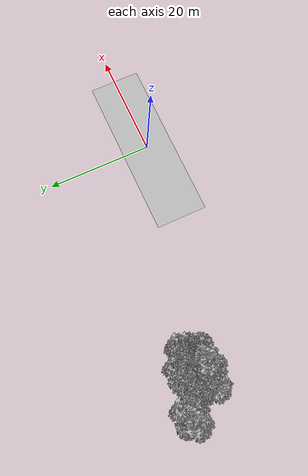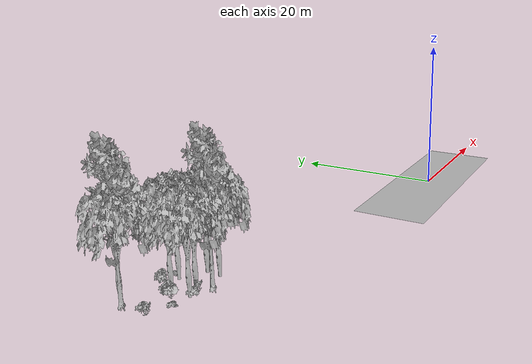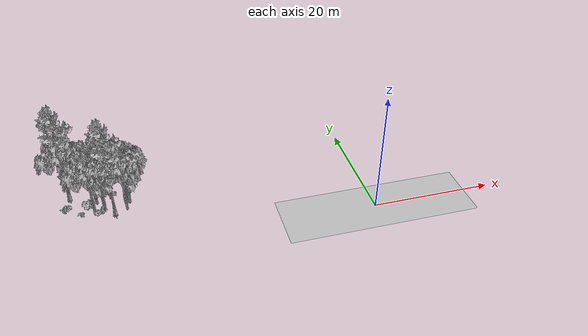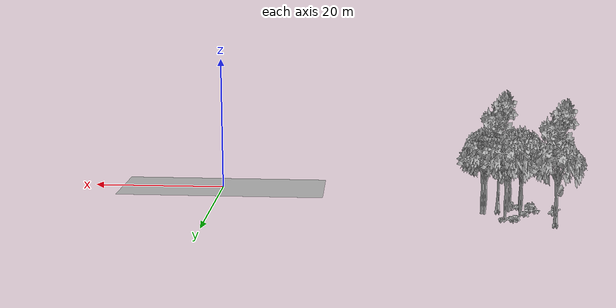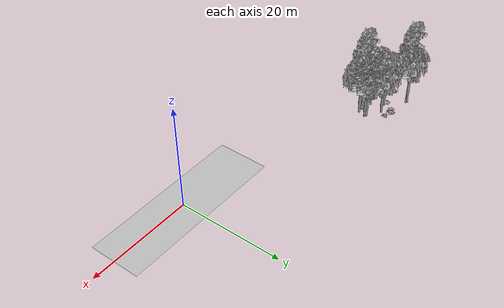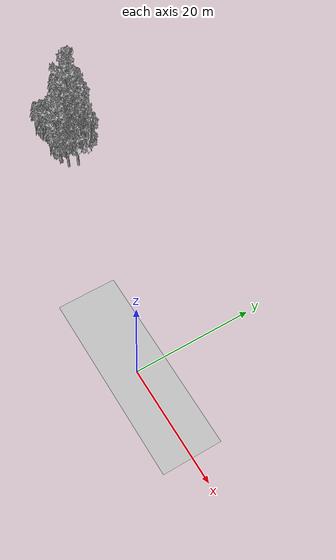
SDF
<sdf version="1.7">
 <world name="default">
  <model name="ground_plane">
   <static>1</static>
   <link name="link">
    <collision name="collision">
     <geometry><plane><normal>0 0 1</normal><size>100 100</size></plane></geometry>
     <surface><contact><ode><min_depth>0.01</min_depth><max_vel>0</max_vel></ode></contact></surface>
    </collision>
    <visual name="grass">
     <cast_shadows>0</cast_shadows>
     <geometry>
      <mesh>
       <scale>0.5814285714285714 0.18142857142857144 0.1</scale>
       <uri>file://grass_plane/meshes/grass_plane.dae</uri>
      </mesh>
     </geometry>
    </visual>
   </link>
  </model>
  <model name="Tree 2">
   <static>1</static>
   <pose>-38.52763291377046 11.083928158771037 0 1.57079 -0 0</pose>
   <link name="link">
    <collision name="collision">
     <geometry><mesh><scale>3.5 5 3.5</scale><uri>model://tree_2/meshes/tree_2.obj</uri></mesh></geometry>
    </collision>
    <visual name="visual">
     <geometry><mesh><scale>3.5 5 3.5</scale><uri>model://tree_2/meshes/tree_2.obj</uri></mesh></geometry>
    </visual>
   </link>
  </model>
  <model name="Tree 103">
   <static>1</static>
   <pose>-40.95871210117214 9.013705744526767 0 1.57079 -0 0</pose>
   <link name="link">
    <collision name="collision">
     <geometry><mesh><scale>3.5 5 3.5</scale><uri>model://tree_9/meshes/tree_9.obj</uri></mesh></geometry>
    </collision>
    <visual name="visual">
     <geometry><mesh><scale>3.5 5 3.5</scale><uri>model://tree_9/meshes/tree_9.obj</uri></mesh></geometry>
    </visual>
   </link>
  </model>
  <model name="Tree 129">
   <static>1</static>
   <pose>-38.915326227133235 11.281877602401845 0 1.57079 -0 0</pose>
   <link name="link">
    <collision name="collision">
     <geometry><mesh><scale>3.5 5 3.5</scale><uri>model://tree_2/meshes/tree_2.obj</uri></mesh></geometry>
    </collision>
    <visual name="visual">
     <geometry><mesh><scale>3.5 5 3.5</scale><uri>model://tree_2/meshes/tree_2.obj</uri></mesh></geometry>
    </visual>
   </link>
  </model>
  <model name="Tree 143">
   <static>1</static>
   <pose>-48.023062553046124 14.7601933107869 0 1.57079 -0 0</pose>
   <link name="link">
    <collision name="collision">
     <geometry><mesh><scale>3.5 5 3.5</scale><uri>model://tree_9/meshes/tree_9.obj</uri></mesh></geometry>
    </collision>
    <visual name="visual">
     <geometry><mesh><scale>3.5 5 3.5</scale><uri>model://tree_9/meshes/tree_9.obj</uri></mesh></geometry>
    </visual>
   </link>
  </model>
  <model name="Tree 201">
   <static>1</static>
   <pose>-42.486743873433596 9.97641363159181 0 1.57079 -0 0</pose>
   <link name="link">
    <collision name="collision">
     <geometry><mesh><scale>3.5 5 3.5</scale><uri>model://tree_2/meshes/tree_2.obj</uri></mesh></geometry>
    </collision>
    <visual name="visual">
     <geometry><mesh><scale>3.5 5 3.5</scale><uri>model://tree_2/meshes/tree_2.obj</uri></mesh></geometry>
    </visual>
   </link>
  </model>
  <model name="Tree 315">
   <static>1</static>
   <pose>-43.74062958446652 12.13553065203698 0 1.57079 -0 0</pose>
   <link name="link">
    <collision name="collision">
     <geometry><mesh><scale>3.5 5 3.5</scale><uri>model://tree_2/meshes/tree_2.obj</uri></mesh></geometry>
    </collision>
    <visual name="visual">
     <geometry><mesh><scale>3.5 5 3.5</scale><uri>model://tree_2/meshes/tree_2.obj</uri></mesh></geometry>
    </visual>
   </link>
  </model>
  <model name="Tree 327">
   <static>1</static>
   <pose>-39.07415056371874 9.52252915976663 0 1.57079 -0 0</pose>
   <link name="link">
    <collision name="collision">
     <geometry><mesh><scale>3.5 5 3.5</scale><uri>model://tree_2/meshes/tree_2.obj</uri></mesh></geometry>
    </collision>
    <visual name="visual">
     <geometry><mesh><scale>3.5 5 3.5</scale><uri>model://tree_2/meshes/tree_2.obj</uri></mesh></geometry>
    </visual>
   </link>
  </model>
  <model name="Tree 351">
   <static>1</static>
   <pose>-41.532627110922604 12.95816530144015 0 1.57079 -0 0</pose>
   <link name="link">
    <collision name="collision">
     <geometry><mesh><scale>3.5 5 3.5</scale><uri>model://tree_2/meshes/tree_2.obj</uri></mesh></geometry>
    </collision>
    <visual name="visual">
     <geometry><mesh><scale>3.5 5 3.5</scale><uri>model://tree_2/meshes/tree_2.obj</uri></mesh></geometry>
    </visual>
   </link>
  </model>
  <model name="Tree 380">
   <static>1</static>
   <pose>-48.00933561262325 14.8655135902899 0 1.57079 -0 0</pose>
   <link name="link">
    <collision name="collision">
     <geometry><mesh><scale>3.5 5 3.5</scale><uri>model://tree_2/meshes/tree_2.obj</uri></mesh></geometry>
    </collision>
    <visual name="visual">
     <geometry><mesh><scale>3.5 5 3.5</scale><uri>model://tree_2/meshes/tree_2.obj</uri></mesh></geometry>
    </visual>
   </link>
  </model>
  <model name="Tree 391">
   <static>1</static>
   <pose>-44.09037844498242 9.495779081489914 0 1.57079 -0 0</pose>
   <link name="link">
    <collision name="collision">
     <geometry><mesh><scale>3.5 5 3.5</scale><uri>model://tree_2/meshes/tree_2.obj</uri></mesh></geometry>
    </collision>
    <visual name="visual">
     <geometry><mesh><scale>3.5 5 3.5</scale><uri>model://tree_2/meshes/tree_2.obj</uri></mesh></geometry>
    </visual>
   </link>
  </model>
  <model name="Bush 28">
   <static>1</static>
   <pose>-44.09630393368263 12.504498925319563 0 1.57079 -0 0</pose>
   <link name="link">
    <collision name="collision">
     <geometry><mesh><scale>2 2 2</scale><uri>model://bush_3/meshes/bush_3.obj</uri></mesh></geometry>
     <surface><contact><collide_without_contact>false</collide_without_contact></contact></surface>
    </collision>
    <visual name="visual">
     <geometry><mesh><scale>2 2 2</scale><uri>model://bush_3/meshes/bush_3.obj</uri></mesh></geometry>
    </visual>
   </link>
  </model>
  <model name="Bush 55">
   <static>1</static>
   <pose>-46.19784829812284 9.947833641667579 0 1.57079 -0 0</pose>
   <link name="link">
    <collision name="collision">
     <geometry><mesh><scale>2 2 2</scale><uri>model://bush_2/meshes/bush_2.obj</uri></mesh></geometry>
     <surface><contact><collide_without_contact>false</collide_without_contact></contact></surface>
    </collision>
    <visual name="visual">
     <geometry><mesh><scale>2 2 2</scale><uri>model://bush_2/meshes/bush_2.obj</uri></mesh></geometry>
    </visual>
   </link>
  </model>
  <model name="Bush 63">
   <static>1</static>
   <pose>-43.594019913695874 9.433622119460857 0 1.57079 -0 0</pose>
   <link name="link">
    <collision name="collision">
     <geometry><mesh><scale>2 2 2</scale><uri>model://bush_3/meshes/bush_3.obj</uri></mesh></geometry>
     <surface><contact><collide_without_contact>false</collide_without_contact></contact></surface>
    </collision>
    <visual name="visual">
     <geometry><mesh><scale>2 2 2</scale><uri>model://bush_3/meshes/bush_3.obj</uri></mesh></geometry>
    </visual>
   </link>
  </model>
  <model name="Bush 65">
   <static>1</static>
   <pose>-40.97671805397727 14.05735644913532 0 1.57079 -0 0</pose>
   <link name="link">
    <collision name="collision">
     <geometry><mesh><scale>2 2 2</scale><uri>model://bush_2/meshes/bush_2.obj</uri></mesh></geometry>
     <surface><contact><collide_without_contact>false</collide_without_contact></contact></surface>
    </collision>
    <visual name="visual">
     <geometry><mesh><scale>2 2 2</scale><uri>model://bush_2/meshes/bush_2.obj</uri></mesh></geometry>
    </visual>
   </link>
  </model>
  <model name="Bush 91">
   <static>1</static>
   <pose>-42.623568503815065 14.129901985071815 0 1.57079 -0 0</pose>
   <link name="link">
    <collision name="collision">
     <geometry><mesh><scale>2 2 2</scale><uri>model://bush_2/meshes/bush_2.obj</uri></mesh></geometry>
     <surface><contact><collide_without_contact>false</collide_without_contact></contact></surface>
    </collision>
    <visual name="visual">
     <geometry><mesh><scale>2 2 2</scale><uri>model://bush_2/meshes/bush_2.obj</uri></mesh></geometry>
    </visual>
   </link>
  </model>
  <model name="Bush 113">
   <static>1</static>
   <pose>-42.848750896292444 9.408494154613535 0 1.57079 -0 0</pose>
   <link name="link">
    <collision name="collision">
     <geometry><mesh><scale>2 2 2</scale><uri>model://bush_4/meshes/bush_4.obj</uri></mesh></geometry>
     <surface><contact><collide_without_contact>false</collide_without_contact></contact></surface>
    </collision>
    <visual name="visual">
     <geometry><mesh><scale>2 2 2</scale><uri>model://bush_4/meshes/bush_4.obj</uri></mesh></geometry>
    </visual>
   </link>
  </model>
  <model name="Bush 128">
   <static>1</static>
   <pose>-42.63164531559082 14.359856970131293 0 1.57079 -0 0</pose>
   <link name="link">
    <collision name="collision">
     <geometry><mesh><scale>2 2 2</scale><uri>model://bush_3/meshes/bush_3.obj</uri></mesh></geometry>
     <surface><contact><collide_without_contact>false</collide_without_contact></contact></surface>
    </collision>
    <visual name="visual">
     <geometry><mesh><scale>2 2 2</scale><uri>model://bush_3/meshes/bush_3.obj</uri></mesh></geometry>
    </visual>
   </link>
  </model>
  <model name="Bush 152">
   <static>1</static>
   <pose>-45.149787907809475 10.906380242945954 0 1.57079 -0 0</pose>
   <link name="link">
    <collision name="collision">
     <geometry><mesh><scale>2 2 2</scale><uri>model://bush_1/meshes/bush_1.obj</uri></mesh></geometry>
     <surface><contact><collide_without_contact>false</collide_without_contact></contact></surface>
    </collision>
    <visual name="visual">
     <geometry><mesh><scale>2 2 2</scale><uri>model://bush_1/meshes/bush_1.obj</uri></mesh></geometry>
    </visual>
   </link>
  </model>
  <model name="Bush 218">
   <static>1</static>
   <pose>-48.63940200300638 10.994750348722235 0 1.57079 -0 0</pose>
   <link name="link">
    <collision name="collision">
     <geometry><mesh><scale>2 2 2</scale><uri>model://bush_4/meshes/bush_4.obj</uri></mesh></geometry>
     <surface><contact><collide_without_contact>false</collide_without_contact></contact></surface>
    </collision>
    <visual name="visual">
     <geometry><mesh><scale>2 2 2</scale><uri>model://bush_4/meshes/bush_4.obj</uri></mesh></geometry>
    </visual>
   </link>
  </model>
  <model name="Bush 228">
   <static>1</static>
   <pose>-48.16498461028809 11.805111779120299 0 1.57079 -0 0</pose>
   <link name="link">
    <collision name="collision">
     <geometry><mesh><scale>2 2 2</scale><uri>model://bush_3/meshes/bush_3.obj</uri></mesh></geometry>
     <surface><contact><collide_without_contact>false</collide_without_contact></contact></surface>
    </collision>
    <visual name="visual">
     <geometry><mesh><scale>2 2 2</scale><uri>model://bush_3/meshes/bush_3.obj</uri></mesh></geometry>
    </visual>
   </link>
  </model>
  <model name="Bush 290">
   <static>1</static>
   <pose>-41.93762453840642 14.909333213335753 0 1.57079 -0 0</pose>
   <link name="link">
    <collision name="collision">
     <geometry><mesh><scale>2 2 2</scale><uri>model://bush_3/meshes/bush_3.obj</uri></mesh></geometry>
     <surface><contact><collide_without_contact>false</collide_without_contact></contact></surface>
    </collision>
    <visual name="visual">
     <geometry><mesh><scale>2 2 2</scale><uri>model://bush_3/meshes/bush_3.obj</uri></mesh></geometry>
    </visual>
   </link>
  </model>
 </world>
</sdf>
